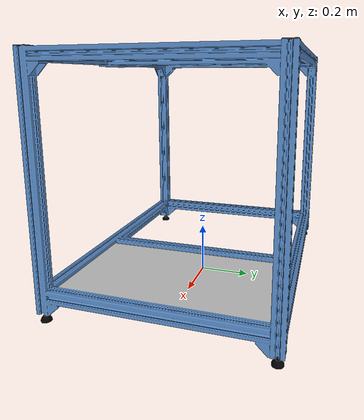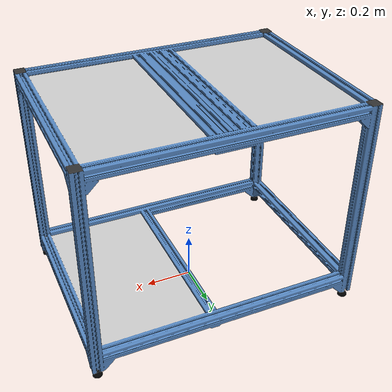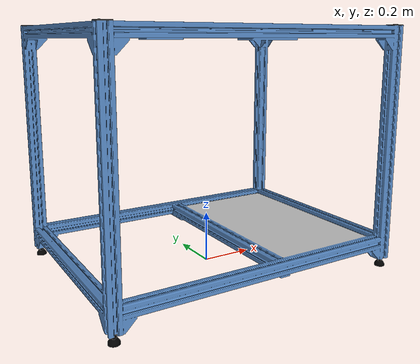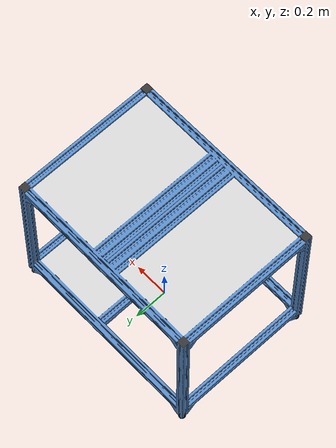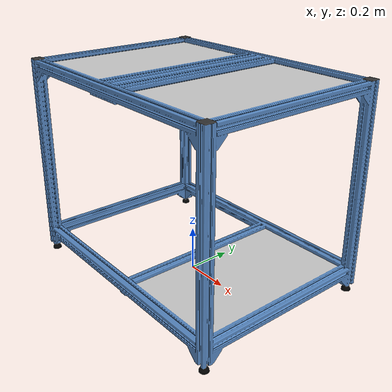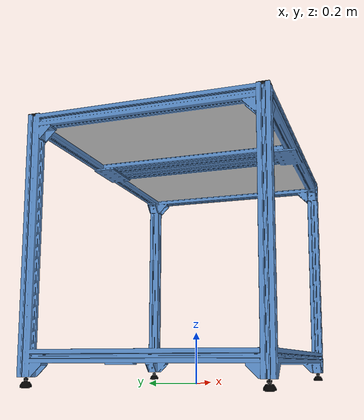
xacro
<?xml version="1.0" ?>
<robot name="ur10_2f85" xmlns:xacro="http://ros.org/wiki/xacro">

	<!-- WORLD -->
	<link name="world"/>

	<!-- TABLE -->
	<xacro:include filename="/home/berith/Documents/Coro_table_doosan/coro_large_vention_table.urdf.xacro"/>
	<xacro:coro_large_vention_table prefix=""/>
	<joint name="table_to_world" type="fixed">
		<parent link="world"/>
		<child link="table_base"/>
		<origin xyz="0 0 0" rpy="0 0 0"/>
	</joint>

</robot>

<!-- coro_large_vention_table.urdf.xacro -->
<robot name="coro_large_vention_table" xmlns:xacro="http://ros.org/wiki/xacro">
	<xacro:macro name="coro_large_vention_table" params="prefix">

	        <!-- Table -->
		<link name="${prefix}table_base">
			<visual>
				<origin xyz="0 0 0" rpy="0 0 0"/>
				<geometry>
	                    		<mesh filename="file:///home/berith/Documents/Coro_table_doosan/large_vention_table.dae"/>
	                	</geometry>
			</visual>
			<collision>
	                	<origin xyz="0 0 0" rpy="0 0 0"/>
				<geometry>
	                    		<mesh filename="file:///home/berith/Documents/Coro_table_doosan/large_vention_table.dae"/>
	                	</geometry>
	            	</collision>
	            	<inertial>
	                	<origin xyz="0 0 0" rpy="0 0 0"/>
	                	<mass value="30"/>
	                	<inertia ixx="1" ixy="0" ixz="0"
	                	  	 iyx="0" iyy="1" iyz="0"
	                	  	 izx="0" izy="0" izz="1"/>
	            	</inertial>
	        </link>

	        <!-- Robot mount -->
	        <link name="${prefix}robot_mount"/>
	        <joint name="robot_mount" type="fixed">
	        	<parent link="${prefix}table_base"/>
	        	<child link="${prefix}robot_mount"/>
	        	<origin xyz="0.0074 0.3449 0.935" rpy="0 0 3.1416"/> <!-- Coordinates taken from a CAD assembly -->
        	</joint>

	</xacro:macro>
</robot>
